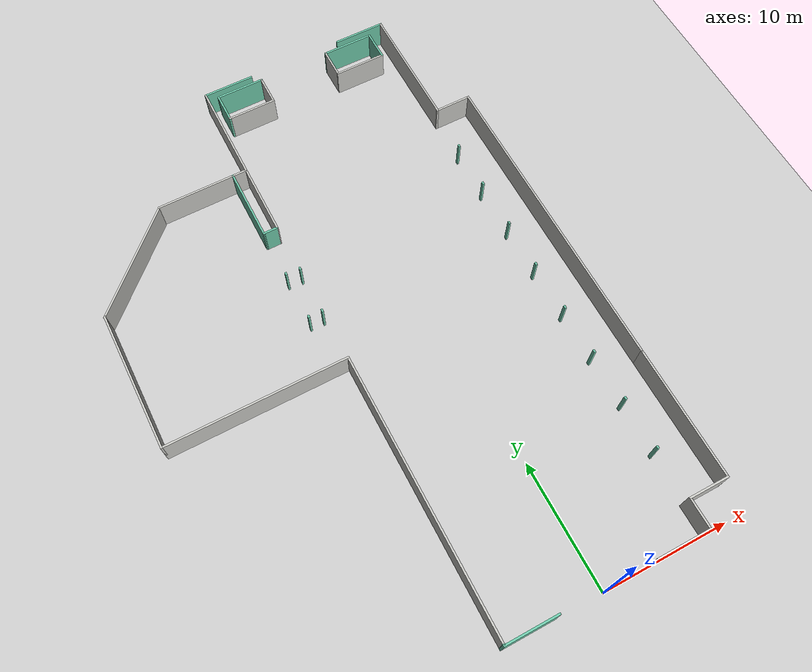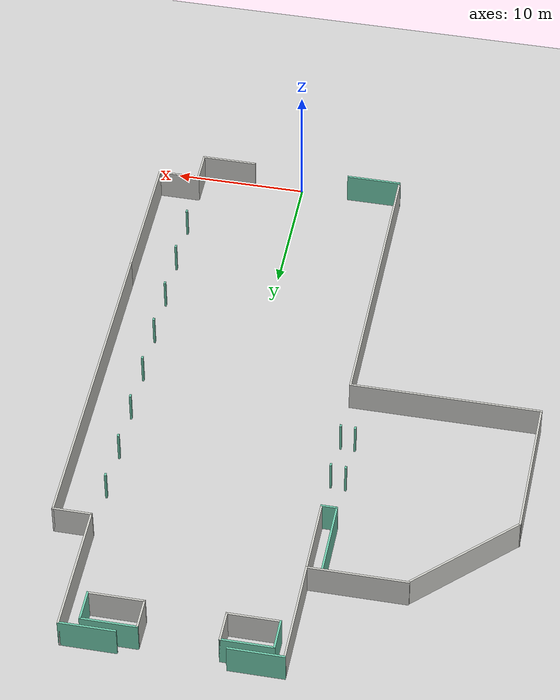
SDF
<sdf version="1.7">
 <world name="default">
  <light name="sun" type="directional">
   <pose>0 0 10 0 -0 0</pose>
   <diffuse>0.8 0.8 0.8 1</diffuse>
   <specular>0.2 0.2 0.2 1</specular>
   <attenuation>
    <range>1000</range>
    <constant>0.9</constant>
    <linear>0.01</linear>
    <quadratic>0.001</quadratic>
   </attenuation>
   <direction>-0.5 0.1 -0.9</direction>
   <spot><inner_angle>0</inner_angle><outer_angle>0</outer_angle><falloff>0</falloff></spot>
  </light>
  <model name="ground_plane">
   <static>1</static>
   <link name="link">
    <collision name="collision">
     <geometry><plane><normal>0 0 1</normal><size>100 100</size></plane></geometry>
     <surface><friction><ode><mu>100</mu><mu2>50</mu2></ode></friction></surface>
    </collision>
    <visual name="visual">
     <cast_shadows>0</cast_shadows>
     <geometry><plane><normal>0 0 1</normal><size>100 100</size></plane></geometry>
     <material>
      <script><uri>file://media/materials/scripts/gazebo.material</uri><name>Gazebo/Grey</name></script>
     </material>
    </visual>
   </link>
  </model>
  <gravity>0 0 -9.8</gravity>
  <magnetic_field>6e-06 2.3e-05 -4.2e-05</magnetic_field>
  <atmosphere type="adiabatic"/>
  <physics type="ode">
   <max_step_size>0.001</max_step_size>
   <real_time_factor>1</real_time_factor>
   <real_time_update_rate>1000</real_time_update_rate>
  </physics>
  <scene><ambient>0.4 0.4 0.4 1</ambient><background>0.7 0.7 0.7 1</background><shadows>1</shadows></scene>
  <audio><device>default</device></audio>
  <spherical_coordinates>
   <surface_model>EARTH_WGS84</surface_model>
   <latitude_deg>0</latitude_deg>
   <longitude_deg>0</longitude_deg>
   <elevation>0</elevation>
   <heading_deg>0</heading_deg>
  </spherical_coordinates>
  <model name="factory_wall">
   <pose>-5.6206 24.1158 0 0 -0 0</pose>
   <link name="Wall_0">
    <collision name="Wall_0_Collision">
     <geometry><box><size>4.25 0.15 2.5</size></box></geometry>
     <pose>0 0 1.25 0 -0 0</pose>
    </collision>
    <visual name="Wall_0_Visual">
     <pose>0 0 1.25 0 -0 0</pose>
     <geometry><box><size>4.25 0.15 2.5</size></box></geometry>
     <material>
      <script><uri>file://media/materials/scripts/gazebo.material</uri><name>Gazebo/CeilingTiled</name></script>
      <ambient>0.435294 0.796078 0.67451 1</ambient>
     </material>
     <meta><layer>0</layer></meta>
    </visual>
    <pose>11.5024 -24.0837 0 0 -0 0</pose>
   </link>
   <link name="Wall_1">
    <collision name="Wall_1_Collision">
     <geometry><box><size>2.5 0.15 2.5</size></box></geometry>
     <pose>0 0 1.25 0 -0 0</pose>
    </collision>
    <visual name="Wall_1_Visual">
     <pose>0 0 1.25 0 -0 0</pose>
     <geometry><box><size>2.5 0.15 2.5</size></box></geometry>
     <material>
      <script><uri>file://media/materials/scripts/gazebo.material</uri><name>Gazebo/CeilingTiled</name></script>
      <ambient>0.435294 0.796078 0.67451 1</ambient>
     </material>
     <meta><layer>0</layer></meta>
    </visual>
    <pose>13.5524 -22.9087 0 0 -0 1.5708</pose>
   </link>
   <link name="Wall_100">
    <collision name="Wall_100_Collision">
     <geometry><box><size>0.25 0.15 2.5</size></box></geometry>
     <pose>0 0 1.25 0 -0 0</pose>
    </collision>
    <visual name="Wall_100_Visual">
     <pose>0 0 1.25 0 -0 0</pose>
     <geometry><box><size>0.25 0.15 2.5</size></box></geometry>
     <material>
      <script><uri>file://media/materials/scripts/gazebo.material</uri><name>Gazebo/Grey</name></script>
      <ambient>0.435294 0.796078 0.67451 1</ambient>
     </material>
     <meta><layer>0</layer></meta>
    </visual>
    <pose>-2.2713 -23.858 0 0 -0 -1.5708</pose>
   </link>
   <link name="Wall_101">
    <collision name="Wall_101_Collision">
     <geometry><box><size>0.25 0.15 2.5</size></box></geometry>
     <pose>0 0 1.25 0 -0 0</pose>
    </collision>
    <visual name="Wall_101_Visual">
     <pose>0 0 1.25 0 -0 0</pose>
     <geometry><box><size>0.25 0.15 2.5</size></box></geometry>
     <material>
      <script><uri>file://media/materials/scripts/gazebo.material</uri><name>Gazebo/Grey</name></script>
      <ambient>0.435294 0.796078 0.67451 1</ambient>
     </material>
     <meta><layer>0</layer></meta>
    </visual>
    <pose>-2.2713 -23.958 0 0 -0 -1.5708</pose>
   </link>
   <link name="Wall_102">
    <collision name="Wall_102_Collision">
     <geometry><box><size>4.25 0.15 2.5</size></box></geometry>
     <pose>0 0 1.25 0 -0 0</pose>
    </collision>
    <visual name="Wall_102_Visual">
     <pose>0 0 1.25 0 -0 0</pose>
     <geometry><box><size>4.25 0.15 2.5</size></box></geometry>
     <material>
      <script><uri>file://media/materials/scripts/gazebo.material</uri><name>Gazebo/Grey</name></script>
      <ambient>0.435294 0.796078 0.67451 1</ambient>
     </material>
     <meta><layer>0</layer></meta>
    </visual>
    <pose>-0.221304 -24.008 0 0 -0 0</pose>
   </link>
   <link name="Wall_2">
    <collision name="Wall_2_Collision">
     <geometry><box><size>3.25 0.15 2.5</size></box></geometry>
     <pose>0 0 1.25 0 -0 0</pose>
    </collision>
    <visual name="Wall_2_Visual">
     <pose>0 0 1.25 0 -0 0</pose>
     <geometry><box><size>3.25 0.15 2.5</size></box></geometry>
     <material>
      <script><uri>file://media/materials/scripts/gazebo.material</uri><name>Gazebo/CeilingTiled</name></script>
      <ambient>0.435294 0.796078 0.67451 1</ambient>
     </material>
     <meta><layer>0</layer></meta>
    </visual>
    <pose>15.1024 -21.7337 0 0 -0 0</pose>
   </link>
   <link name="Wall_26">
    <collision name="Wall_26_Collision">
     <geometry><box><size>9.72291 0.15 2.5</size></box></geometry>
     <pose>0 0 1.25 0 -0 0</pose>
    </collision>
    <visual name="Wall_26_Visual">
     <pose>0 0 1.25 0 -0 0</pose>
     <geometry><box><size>9.72291 0.15 2.5</size></box></geometry>
     <material>
      <script><uri>file://media/materials/scripts/gazebo.material</uri><name>Gazebo/CeilingTiled</name></script>
      <ambient>0.435294 0.796078 0.67451 1</ambient>
     </material>
     <meta><layer>0</layer></meta>
    </visual>
    <pose>-13.1874 12.4765 0 0 -0 -2.37088</pose>
   </link>
   <link name="Wall_27">
    <collision name="Wall_27_Collision">
     <geometry><box><size>11.25 0.15 2.5</size></box></geometry>
     <pose>0 0 1.25 0 -0 0</pose>
    </collision>
    <visual name="Wall_27_Visual">
     <pose>0 0 1.25 0 -0 0</pose>
     <geometry><box><size>11.25 0.15 2.5</size></box></geometry>
     <material>
      <script><uri>file://media/materials/scripts/gazebo.material</uri><name>Gazebo/CeilingTiled</name></script>
      <ambient>0.435294 0.796078 0.67451 1</ambient>
     </material>
     <meta><layer>0</layer></meta>
    </visual>
    <pose>-16.6213 3.59202 0 0 -0 -1.5708</pose>
   </link>
   <link name="Wall_28">
    <collision name="Wall_28_Collision">
     <geometry><box><size>14.5 0.15 2.5</size></box></geometry>
     <pose>0 0 1.25 0 -0 0</pose>
    </collision>
    <visual name="Wall_28_Visual">
     <pose>0 0 1.25 0 -0 0</pose>
     <geometry><box><size>14.5 0.15 2.5</size></box></geometry>
     <material>
      <script><uri>file://media/materials/scripts/gazebo.material</uri><name>Gazebo/CeilingTiled</name></script>
      <ambient>0.435294 0.796078 0.67451 1</ambient>
     </material>
     <meta><layer>0</layer></meta>
    </visual>
    <pose>-9.4463 -1.95798 0 0 -0 0</pose>
   </link>
   <link name="Wall_29">
    <collision name="Wall_29_Collision">
     <geometry><box><size>22 0.15 2.5</size></box></geometry>
     <pose>0 0 1.25 0 -0 0</pose>
    </collision>
    <visual name="Wall_29_Visual">
     <pose>0 0 1.25 0 -0 0</pose>
     <geometry><box><size>22 0.15 2.5</size></box></geometry>
     <material>
      <script><uri>file://media/materials/scripts/gazebo.material</uri><name>Gazebo/CeilingTiled</name></script>
      <ambient>0.435294 0.796078 0.67451 1</ambient>
     </material>
     <meta><layer>0</layer></meta>
    </visual>
    <pose>-2.2713 -12.883 0 0 -0 -1.5708</pose>
   </link>
   <link name="Wall_31">
    <collision name="Wall_31_Collision">
     <geometry><box><size>0.25 0.15 2.5</size></box></geometry>
     <pose>0 0 1.25 0 -0 0</pose>
    </collision>
    <visual name="Wall_31_Visual">
     <pose>0 0 1.25 0 -0 0</pose>
     <geometry><box><size>0.25 0.15 2.5</size></box></geometry>
     <material>
      <script><uri>file://media/materials/scripts/gazebo.material</uri><name>Gazebo/Grey</name></script>
      <ambient>0.435294 0.796078 0.67451 1</ambient>
     </material>
     <meta><layer>0</layer></meta>
    </visual>
    <pose>13.659 10.1318 0 0 -0 -1.5708</pose>
   </link>
   <link name="Wall_33">
    <collision name="Wall_33_Collision">
     <geometry><box><size>0.25 0.15 2.5</size></box></geometry>
     <pose>0 0 1.25 0 -0 0</pose>
    </collision>
    <visual name="Wall_33_Visual">
     <pose>0 0 1.25 0 -0 0</pose>
     <geometry><box><size>0.25 0.15 2.5</size></box></geometry>
     <material>
      <script><uri>file://media/materials/scripts/gazebo.material</uri><name>Gazebo/Grey</name></script>
      <ambient>0.435294 0.796078 0.67451 1</ambient>
     </material>
     <meta><layer>0</layer></meta>
    </visual>
    <pose>13.5996 6.21499 0 0 -0 -1.5708</pose>
   </link>
   <link name="Wall_35">
    <collision name="Wall_35_Collision">
     <geometry><box><size>0.25 0.15 2.5</size></box></geometry>
     <pose>0 0 1.25 0 -0 0</pose>
    </collision>
    <visual name="Wall_35_Visual">
     <pose>0 0 1.25 0 -0 0</pose>
     <geometry><box><size>0.25 0.15 2.5</size></box></geometry>
     <material>
      <script><uri>file://media/materials/scripts/gazebo.material</uri><name>Gazebo/Grey</name></script>
      <ambient>0.435294 0.796078 0.67451 1</ambient>
     </material>
     <meta><layer>0</layer></meta>
    </visual>
    <pose>13.6066 2.20928 0 0 -0 -1.5708</pose>
   </link>
   <link name="Wall_37">
    <collision name="Wall_37_Collision">
     <geometry><box><size>0.25 0.15 2.5</size></box></geometry>
     <pose>0 0 1.25 0 -0 0</pose>
    </collision>
    <visual name="Wall_37_Visual">
     <pose>0 0 1.25 0 -0 0</pose>
     <geometry><box><size>0.25 0.15 2.5</size></box></geometry>
     <material>
      <script><uri>file://media/materials/scripts/gazebo.material</uri><name>Gazebo/Grey</name></script>
      <ambient>0.435294 0.796078 0.67451 1</ambient>
     </material>
     <meta><layer>0</layer></meta>
    </visual>
    <pose>13.5839 -1.7704 0 0 -0 -1.5708</pose>
   </link>
   <link name="Wall_39">
    <collision name="Wall_39_Collision">
     <geometry><box><size>0.25 0.15 2.5</size></box></geometry>
     <pose>0 0 1.25 0 -0 0</pose>
    </collision>
    <visual name="Wall_39_Visual">
     <pose>0 0 1.25 0 -0 0</pose>
     <geometry><box><size>0.25 0.15 2.5</size></box></geometry>
     <material>
      <script><uri>file://media/materials/scripts/gazebo.material</uri><name>Gazebo/Grey</name></script>
      <ambient>0.435294 0.796078 0.67451 1</ambient>
     </material>
     <meta><layer>0</layer></meta>
    </visual>
    <pose>13.6066 -5.81829 0 0 -0 -1.5708</pose>
   </link>
   <link name="Wall_41">
    <collision name="Wall_41_Collision">
     <geometry><box><size>0.25 0.15 2.5</size></box></geometry>
     <pose>0 0 1.25 0 -0 0</pose>
    </collision>
    <visual name="Wall_41_Visual">
     <pose>0 0 1.25 0 -0 0</pose>
     <geometry><box><size>0.25 0.15 2.5</size></box></geometry>
     <material>
      <script><uri>file://media/materials/scripts/gazebo.material</uri><name>Gazebo/Grey</name></script>
      <ambient>0.435294 0.796078 0.67451 1</ambient>
     </material>
     <meta><layer>0</layer></meta>
    </visual>
    <pose>13.6066 -9.77523 0 0 -0 -1.5708</pose>
   </link>
   <link name="Wall_43">
    <collision name="Wall_43_Collision">
     <geometry><box><size>0.25 0.15 2.5</size></box></geometry>
     <pose>0 0 1.25 0 -0 0</pose>
    </collision>
    <visual name="Wall_43_Visual">
     <pose>0 0 1.25 0 -0 0</pose>
     <geometry><box><size>0.25 0.15 2.5</size></box></geometry>
     <material>
      <script><uri>file://media/materials/scripts/gazebo.material</uri><name>Gazebo/Grey</name></script>
      <ambient>0.435294 0.796078 0.67451 1</ambient>
     </material>
     <meta><layer>0</layer></meta>
    </visual>
    <pose>13.6287 -13.7936 0 0 -0 -1.5708</pose>
   </link>
   <link name="Wall_45">
    <collision name="Wall_45_Collision">
     <geometry><box><size>0.25 0.15 2.5</size></box></geometry>
     <pose>0 0 1.25 0 -0 0</pose>
    </collision>
    <visual name="Wall_45_Visual">
     <pose>0 0 1.25 0 -0 0</pose>
     <geometry><box><size>0.25 0.15 2.5</size></box></geometry>
     <material>
      <script><uri>file://media/materials/scripts/gazebo.material</uri><name>Gazebo/Grey</name></script>
      <ambient>0.435294 0.796078 0.67451 1</ambient>
     </material>
     <meta><layer>0</layer></meta>
    </visual>
    <pose>13.6077 -17.8021 0 0 -0 -1.5708</pose>
   </link>
   <link name="Wall_48">
    <collision name="Wall_48_Collision">
     <geometry><box><size>2.5 0.15 2.5</size></box></geometry>
     <pose>0 0 1.25 0 -0 0</pose>
    </collision>
    <visual name="Wall_48_Visual">
     <pose>0 0 1.25 0 -0 0</pose>
     <geometry><box><size>2.5 0.15 2.5</size></box></geometry>
     <material>
      <script><uri>file://media/materials/scripts/gazebo.material</uri><name>Gazebo/Grey</name></script>
      <ambient>0.435294 0.796078 0.67451 1</ambient>
     </material>
     <meta><layer>0</layer></meta>
    </visual>
    <pose>12.3919 22.2472 0 0 -0 1.5708</pose>
   </link>
   <link name="Wall_5">
    <collision name="Wall_5_Collision">
     <geometry><box><size>10.5 0.15 2.5</size></box></geometry>
     <pose>0 0 1.25 0 -0 0</pose>
    </collision>
    <visual name="Wall_5_Visual">
     <pose>0 0 1.25 0 -0 0</pose>
     <geometry><box><size>10.5 0.15 2.5</size></box></geometry>
     <material>
      <script><uri>file://media/materials/scripts/gazebo.material</uri><name>Gazebo/CeilingTiled</name></script>
      <ambient>0.435294 0.796078 0.67451 1</ambient>
     </material>
     <meta><layer>0</layer></meta>
    </visual>
    <pose>16.6524 -16.5587 0 0 -0 1.5708</pose>
   </link>
   <link name="Wall_50">
    <collision name="Wall_50_Collision">
     <geometry><box><size>2.5 0.15 2.5</size></box></geometry>
     <pose>0 0 1.25 0 -0 0</pose>
    </collision>
    <visual name="Wall_50_Visual">
     <pose>0 0 1.25 0 -0 0</pose>
     <geometry><box><size>2.5 0.15 2.5</size></box></geometry>
     <material>
      <script><uri>file://media/materials/scripts/gazebo.material</uri><name>Gazebo/Grey</name></script>
      <ambient>0.435294 0.796078 0.67451 1</ambient>
     </material>
     <meta><layer>0</layer></meta>
    </visual>
    <pose>-1.45809 22.2472 0 0 -0 -1.5708</pose>
   </link>
   <link name="Wall_56">
    <collision name="Wall_56_Collision">
     <geometry><box><size>4.19887 0.15 2.5</size></box></geometry>
     <pose>0 0 1.25 0 -0 0</pose>
    </collision>
    <visual name="Wall_56_Visual">
     <pose>0 0 1.25 0 -0 0</pose>
     <geometry><box><size>4.19887 0.15 2.5</size></box></geometry>
     <material>
      <script><uri>file://media/materials/scripts/gazebo.material</uri><name>Gazebo/Grey</name></script>
      <ambient>0.435294 0.796078 0.67451 1</ambient>
     </material>
     <meta><layer>0</layer></meta>
    </visual>
    <pose>-0.293095 24.0837 0 0 -0 -3.14159</pose>
   </link>
   <link name="Wall_57">
    <collision name="Wall_57_Collision">
     <geometry><box><size>8.25 0.15 2.5</size></box></geometry>
     <pose>0 0 1.25 0 -0 0</pose>
    </collision>
    <visual name="Wall_57_Visual">
     <pose>0 0 1.25 0 -0 0</pose>
     <geometry><box><size>8.25 0.15 2.5</size></box></geometry>
     <material>
      <script><uri>file://media/materials/scripts/gazebo.material</uri><name>Gazebo/CeilingTiled</name></script>
      <ambient>0.435294 0.796078 0.67451 1</ambient>
     </material>
     <meta><layer>0</layer></meta>
    </visual>
    <pose>-2.31753 19.9939 0 0 -0 -1.5708</pose>
   </link>
   <link name="Wall_59">
    <collision name="Wall_59_Collision">
     <geometry><box><size>7.5 0.15 2.5</size></box></geometry>
     <pose>0 0 1.25 0 -0 0</pose>
    </collision>
    <visual name="Wall_59_Visual">
     <pose>0 0 1.25 0 -0 0</pose>
     <geometry><box><size>7.5 0.15 2.5</size></box></geometry>
     <material>
      <script><uri>file://media/materials/scripts/gazebo.material</uri><name>Gazebo/CeilingTiled</name></script>
      <ambient>0.435294 0.796078 0.67451 1</ambient>
     </material>
     <meta><layer>0</layer></meta>
    </visual>
    <pose>-5.99253 15.9439 0 0 -0 3.14159</pose>
   </link>
   <link name="Wall_6">
    <collision name="Wall_6_Collision">
     <geometry><box><size>25.5 0.15 2.5</size></box></geometry>
     <pose>0 0 1.25 0 -0 0</pose>
    </collision>
    <visual name="Wall_6_Visual">
     <pose>0 0 1.25 0 -0 0</pose>
     <geometry><box><size>25.5 0.15 2.5</size></box></geometry>
     <material>
      <script><uri>file://media/materials/scripts/gazebo.material</uri><name>Gazebo/CeilingTiled</name></script>
      <ambient>0.435294 0.796078 0.67451 1</ambient>
     </material>
     <meta><layer>0</layer></meta>
    </visual>
    <pose>16.6524 1.29131 0 0 -0 1.5708</pose>
   </link>
   <link name="Wall_61">
    <collision name="Wall_61_Collision">
     <geometry><box><size>6 0.15 2.5</size></box></geometry>
     <pose>0 0 1.25 0 -0 0</pose>
    </collision>
    <visual name="Wall_61_Visual">
     <pose>0 0 1.25 0 -0 0</pose>
     <geometry><box><size>6 0.15 2.5</size></box></geometry>
     <material>
      <script><uri>file://media/materials/scripts/gazebo.material</uri><name>Gazebo/CeilingTiled</name></script>
      <ambient>0.435294 0.796078 0.67451 1</ambient>
     </material>
     <meta><layer>0</layer></meta>
    </visual>
    <pose>-2.31753 13.0189 0 0 -0 -1.5708</pose>
   </link>
   <link name="Wall_68">
    <collision name="Wall_68_Collision">
     <geometry><box><size>6 0.15 2.5</size></box></geometry>
     <pose>0 0 1.25 0 -0 0</pose>
    </collision>
    <visual name="Wall_68_Visual">
     <pose>0 0 1.25 0 -0 0</pose>
     <geometry><box><size>6 0.15 2.5</size></box></geometry>
     <material>
      <script><uri>file://media/materials/scripts/gazebo.material</uri><name>Gazebo/Grey</name></script>
      <ambient>0.435294 0.796078 0.67451 1</ambient>
     </material>
     <meta><layer>0</layer></meta>
    </visual>
    <pose>-3.43921 13.0173 0 0 -0 -1.5708</pose>
   </link>
   <link name="Wall_7">
    <collision name="Wall_7_Collision">
     <geometry><box><size>3 0.15 2.5</size></box></geometry>
     <pose>0 0 1.25 0 -0 0</pose>
    </collision>
    <visual name="Wall_7_Visual">
     <pose>0 0 1.25 0 -0 0</pose>
     <geometry><box><size>3 0.15 2.5</size></box></geometry>
     <material>
      <script><uri>file://media/materials/scripts/gazebo.material</uri><name>Gazebo/CeilingTiled</name></script>
      <ambient>0.435294 0.796078 0.67451 1</ambient>
     </material>
     <meta><layer>0</layer></meta>
    </visual>
    <pose>15.2274 13.9663 0 0 -0 3.14159</pose>
   </link>
   <link name="Wall_70">
    <collision name="Wall_70_Collision">
     <geometry><box><size>0.25 0.15 2.5</size></box></geometry>
     <pose>0 0 1.25 0 -0 0</pose>
    </collision>
    <visual name="Wall_70_Visual">
     <pose>0 0 1.25 0 -0 0</pose>
     <geometry><box><size>0.25 0.15 2.5</size></box></geometry>
     <material>
      <script><uri>file://media/materials/scripts/gazebo.material</uri><name>Gazebo/Grey</name></script>
      <ambient>0.435294 0.796078 0.67451 1</ambient>
     </material>
     <meta><layer>0</layer></meta>
    </visual>
    <pose>-2.26605 6.10849 0 0 -0 -1.5708</pose>
   </link>
   <link name="Wall_8">
    <collision name="Wall_8_Collision">
     <geometry><box><size>10.25 0.15 2.5</size></box></geometry>
     <pose>0 0 1.25 0 -0 0</pose>
    </collision>
    <visual name="Wall_8_Visual">
     <pose>0 0 1.25 0 -0 0</pose>
     <geometry><box><size>10.25 0.15 2.5</size></box></geometry>
     <material>
      <script><uri>file://media/materials/scripts/gazebo.material</uri><name>Gazebo/CeilingTiled</name></script>
      <ambient>0.435294 0.796078 0.67451 1</ambient>
     </material>
     <meta><layer>0</layer></meta>
    </visual>
    <pose>13.8024 19.0163 0 0 -0 1.5708</pose>
   </link>
   <link name="Wall_80">
    <collision name="Wall_80_Collision">
     <geometry><box><size>0.25 0.15 2.5</size></box></geometry>
     <pose>0 0 1.25 0 -0 0</pose>
    </collision>
    <visual name="Wall_80_Visual">
     <pose>0 0 1.25 0 -0 0</pose>
     <geometry><box><size>0.25 0.15 2.5</size></box></geometry>
     <material>
      <script><uri>file://media/materials/scripts/gazebo.material</uri><name>Gazebo/Grey</name></script>
      <ambient>0.435294 0.796078 0.67451 1</ambient>
     </material>
     <meta><layer>0</layer></meta>
    </visual>
    <pose>-2.3056 2.23263 0 0 -0 -1.5708</pose>
   </link>
   <link name="Wall_82">
    <collision name="Wall_82_Collision">
     <geometry><box><size>0.25 0.15 2.5</size></box></geometry>
     <pose>0 0 1.25 0 -0 0</pose>
    </collision>
    <visual name="Wall_82_Visual">
     <pose>0 0 1.25 0 -0 0</pose>
     <geometry><box><size>0.25 0.15 2.5</size></box></geometry>
     <material>
      <script><uri>file://media/materials/scripts/gazebo.material</uri><name>Gazebo/Grey</name></script>
      <ambient>0.435294 0.796078 0.67451 1</ambient>
     </material>
     <meta><layer>0</layer></meta>
    </visual>
    <pose>-3.39321 2.25241 0 0 -0 -1.5708</pose>
   </link>
   <link name="Wall_84">
    <collision name="Wall_84_Collision">
     <geometry><box><size>0.25 0.15 2.5</size></box></geometry>
     <pose>0 0 1.25 0 -0 0</pose>
    </collision>
    <visual name="Wall_84_Visual">
     <pose>0 0 1.25 0 -0 0</pose>
     <geometry><box><size>0.25 0.15 2.5</size></box></geometry>
     <material>
      <script><uri>file://media/materials/scripts/gazebo.material</uri><name>Gazebo/Grey</name></script>
      <ambient>0.435294 0.796078 0.67451 1</ambient>
     </material>
     <meta><layer>0</layer></meta>
    </visual>
    <pose>-3.39321 6.18759 0 0 -0 -1.5708</pose>
   </link>
   <link name="Wall_86">
    <collision name="Wall_86_Collision">
     <geometry><box><size>4 0.15 2.5</size></box></geometry>
     <pose>0 0 1.25 0 -0 0</pose>
    </collision>
    <visual name="Wall_86_Visual">
     <pose>0 0 1.25 0 -0 0</pose>
     <geometry><box><size>4 0.15 2.5</size></box></geometry>
     <material>
      <script><uri>file://media/materials/scripts/gazebo.material</uri><name>Gazebo/Grey</name></script>
      <ambient>0.435294 0.796078 0.67451 1</ambient>
     </material>
     <meta><layer>0</layer></meta>
    </visual>
    <pose>0.466914 23.4222 0 0 -0 0</pose>
   </link>
   <link name="Wall_87">
    <collision name="Wall_87_Collision">
     <geometry><box><size>2.5 0.15 2.5</size></box></geometry>
     <pose>0 0 1.25 0 -0 0</pose>
    </collision>
    <visual name="Wall_87_Visual">
     <pose>0 0 1.25 0 -0 0</pose>
     <geometry><box><size>2.5 0.15 2.5</size></box></geometry>
     <material>
      <script><uri>file://media/materials/scripts/gazebo.material</uri><name>Gazebo/CeilingTiled</name></script>
      <ambient>0.435294 0.796078 0.67451 1</ambient>
     </material>
     <meta><layer>0</layer></meta>
    </visual>
    <pose>2.39191 22.2472 0 0 -0 -1.5708</pose>
   </link>
   <link name="Wall_88">
    <collision name="Wall_88_Collision">
     <geometry><box><size>4 0.15 2.5</size></box></geometry>
     <pose>0 0 1.25 0 -0 0</pose>
    </collision>
    <visual name="Wall_88_Visual">
     <pose>0 0 1.25 0 -0 0</pose>
     <geometry><box><size>4 0.15 2.5</size></box></geometry>
     <material>
      <script><uri>file://media/materials/scripts/gazebo.material</uri><name>Gazebo/CeilingTiled</name></script>
      <ambient>0.435294 0.796078 0.67451 1</ambient>
     </material>
     <meta><layer>0</layer></meta>
    </visual>
    <pose>0.466914 21.0722 0 0 -0 3.14159</pose>
   </link>
   <link name="Wall_92">
    <collision name="Wall_92_Collision">
     <geometry><box><size>4.25 0.15 2.5</size></box></geometry>
     <pose>0 0 1.25 0 -0 0</pose>
    </collision>
    <visual name="Wall_92_Visual">
     <pose>0 0 1.25 0 -0 0</pose>
     <geometry><box><size>4.25 0.15 2.5</size></box></geometry>
     <material>
      <script><uri>file://media/materials/scripts/gazebo.material</uri><name>Gazebo/Grey</name></script>
      <ambient>0.435294 0.796078 0.67451 1</ambient>
     </material>
     <meta><layer>0</layer></meta>
    </visual>
    <pose>10.3419 23.4222 0 0 -0 3.14159</pose>
   </link>
   <link name="Wall_93">
    <collision name="Wall_93_Collision">
     <geometry><box><size>2.5 0.15 2.5</size></box></geometry>
     <pose>0 0 1.25 0 -0 0</pose>
    </collision>
    <visual name="Wall_93_Visual">
     <pose>0 0 1.25 0 -0 0</pose>
     <geometry><box><size>2.5 0.15 2.5</size></box></geometry>
     <material>
      <script><uri>file://media/materials/scripts/gazebo.material</uri><name>Gazebo/CeilingTiled</name></script>
      <ambient>0.435294 0.796078 0.67451 1</ambient>
     </material>
     <meta><layer>0</layer></meta>
    </visual>
    <pose>8.29191 22.2472 0 0 -0 -1.5708</pose>
   </link>
   <link name="Wall_94">
    <collision name="Wall_94_Collision">
     <geometry><box><size>4.25 0.15 2.5</size></box></geometry>
     <pose>0 0 1.25 0 -0 0</pose>
    </collision>
    <visual name="Wall_94_Visual">
     <pose>0 0 1.25 0 -0 0</pose>
     <geometry><box><size>4.25 0.15 2.5</size></box></geometry>
     <material>
      <script><uri>file://media/materials/scripts/gazebo.material</uri><name>Gazebo/CeilingTiled</name></script>
      <ambient>0.435294 0.796078 0.67451 1</ambient>
     </material>
     <meta><layer>0</layer></meta>
    </visual>
    <pose>10.3419 21.0722 0 0 -0 0</pose>
   </link>
   <link name="Wall_96">
    <collision name="Wall_96_Collision">
     <geometry><box><size>1.27168 0.15 2.5</size></box></geometry>
     <pose>0 0 1.25 0 -0 0</pose>
    </collision>
    <visual name="Wall_96_Visual">
     <pose>0 0 1.25 0 -0 0</pose>
     <geometry><box><size>1.27168 0.15 2.5</size></box></geometry>
     <material>
      <script><uri>file://media/materials/scripts/gazebo.material</uri><name>Gazebo/Grey</name></script>
      <ambient>0.435294 0.796078 0.67451 1</ambient>
     </material>
     <meta><layer>0</layer></meta>
    </visual>
    <pose>-2.87837 10.0931 0 0 -0 0.00142</pose>
   </link>
   <link name="Wall_98">
    <collision name="Wall_98_Collision">
     <geometry><box><size>4.25 0.15 2.5</size></box></geometry>
     <pose>0 0 1.25 0 -0 0</pose>
    </collision>
    <visual name="Wall_98_Visual">
     <pose>0 0 1.25 0 -0 0</pose>
     <geometry><box><size>4.25 0.15 2.5</size></box></geometry>
     <material>
      <script><uri>file://media/materials/scripts/gazebo.material</uri><name>Gazebo/Grey</name></script>
      <ambient>0.435294 0.796078 0.67451 1</ambient>
     </material>
     <meta><layer>0</layer></meta>
    </visual>
    <pose>11.7524 24.0663 0 0 -0 3.14159</pose>
   </link>
   <static>1</static>
  </model>
 </world>
</sdf>
